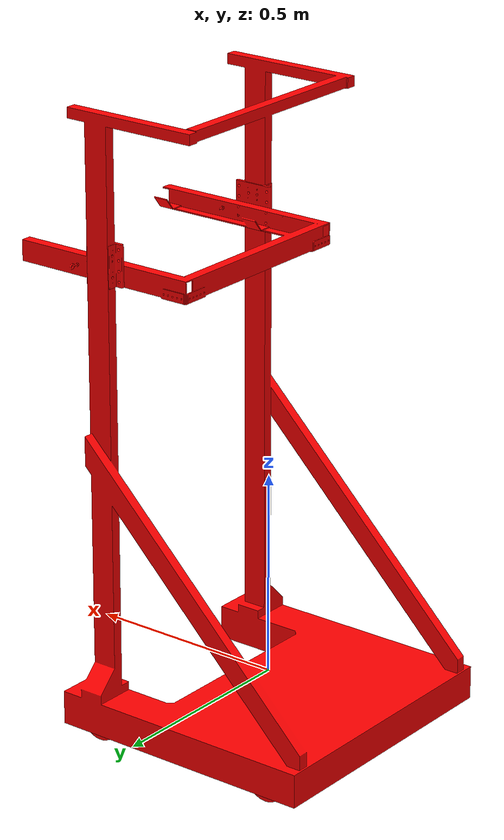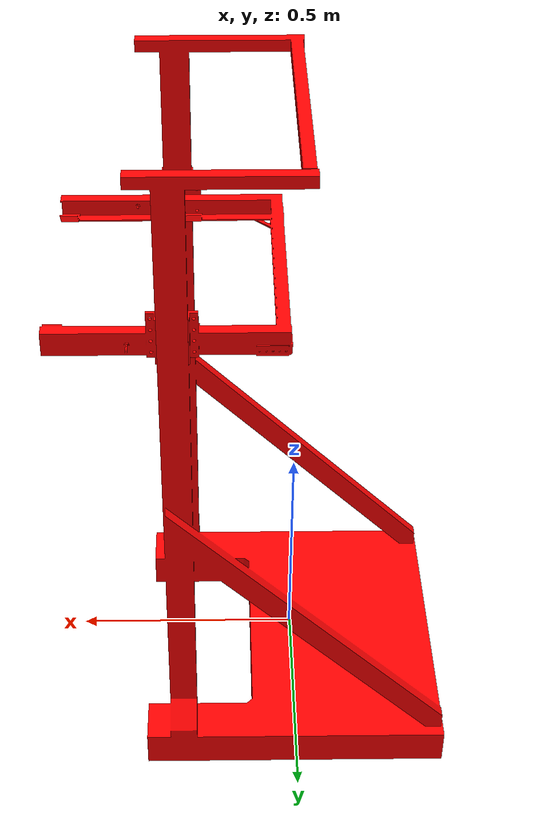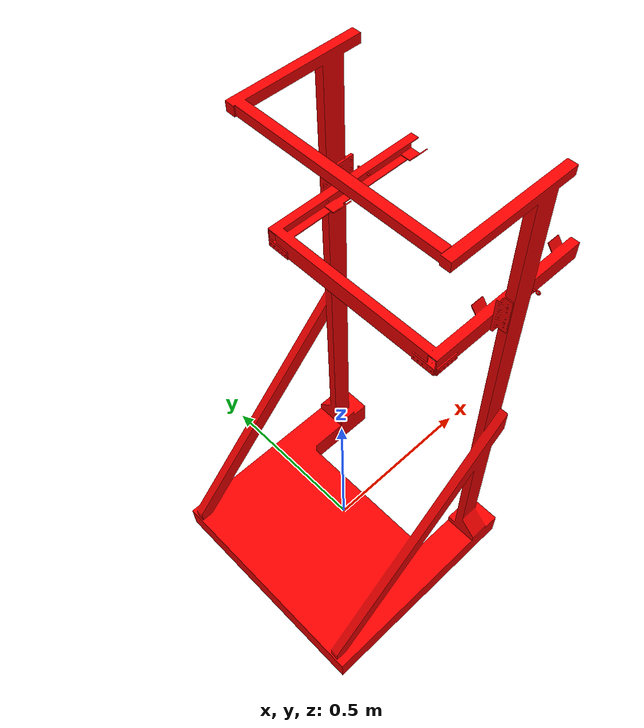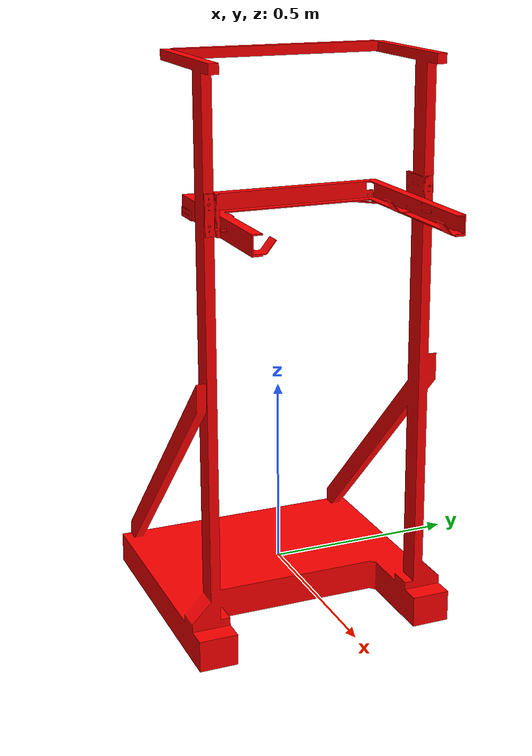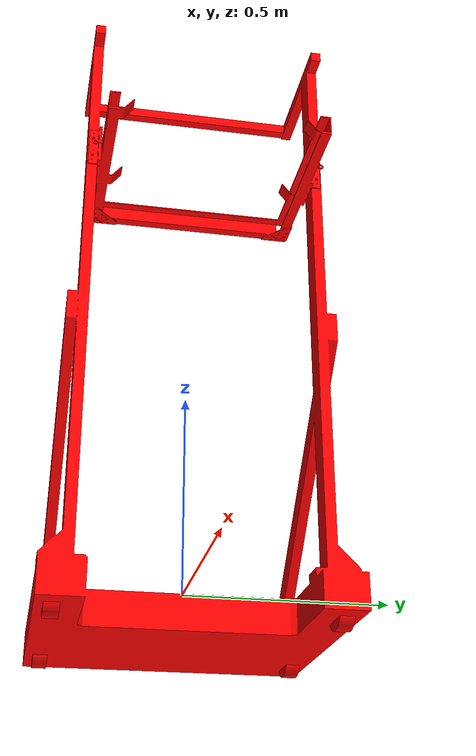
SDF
<?xml version="1.0" encoding="utf-8"?>
<sdf version="1.5">
  <model name="Mildread2015">
    <pose>0 0 -0.0641857999998441 0 0 0</pose>
    <plugin name="clock" filename="libgz_clock.so">
      <topic>/gazebo/frc/time</topic>
    </plugin>
    <link name="Chassis">
      <gravity>1</gravity>
      <self_collide>0</self_collide>
      <pose>0.0380029889506857 -0.00235709265715786 0.398592483781348 1.5707963267949 2.31519275537905E-15 -1.5707963267949</pose>
      <must_be_base_link>1</must_be_base_link>
      <velocity_decay>
        <linear>0</linear>
        <angular>0</angular>
      </velocity_decay>
      <inertial>
        <mass>12.5954657007975</mass>
        <pose>0 0 0 0 0 0</pose>
        <inertia>
          <ixx>4.15538346471795</ixx>
          <ixy>0.0117617887458408</ixy>
          <ixz>0.00608192316874415</ixz>
          <iyy>1.42548615639183</iyy>
          <iyz>0.70356227808634</iyz>
          <izz>4.34412622713074</izz>
        </inertia>
      </inertial>
      <collision name="Chassis_collision">
        <pose>-0.00235709265715695 -0.398592483781348 0.0380029889506856 0 0 0</pose>
        <geometry>
          <mesh>
            <scale>1 1 1</scale>
            <uri>model://Mildread2015/meshes/Chassis_col.STL</uri>
          </mesh>
        </geometry>
        <surface>
          <contact>
            <ode />
          </contact>
          <friction>
            <ode>
              <mu>0.5</mu>
              <mu2>0.5</mu2>
            </ode>
          </friction>
        </surface>
      </collision>
      <visual name="Chassis_visual">
        <pose>-0.00235709265715695 -0.398592483781348 0.0380029889506856 0 0 0</pose>
        <material>
          <ambient>1 0 0 1</ambient>
          <diffuse>1 0 0 1</diffuse>
        </material>
        <geometry>
          <mesh>
            <scale>1 1 1</scale>
            <uri>model://Mildread2015/meshes/Chassis.STL</uri>
          </mesh>
        </geometry>
      </visual>
      <sensor name="LeftChassisUltrasonic" type="sonar">
        <always_on>1</always_on>
        <visualize>1</visualize>
        <pose>-0.317704442657165 -0.230867483781196 -0.276072010994604 0 0 1.5707963267949</pose>
        <sonar>
          <min>0.1</min>
          <max>2</max>
          <radius>0.05</radius>
        </sonar>
      </sensor>
      <sensor name="RightChassisUltrasonic" type="sonar">
        <always_on>1</always_on>
        <visualize>1</visualize>
        <pose>0.312990257342842 -0.230867483781195 -0.276072009207477 0 0 1.5707963267949</pose>
        <sonar>
          <min>0.1</min>
          <max>2</max>
          <radius>0.05</radius>
        </sonar>
      </sensor>
    </link>
    <link name="LF">
      <gravity>1</gravity>
      <self_collide>0</self_collide>
      <pose>0.24500840000005 0.312470799999999 -0.0133857999997411 1.5707963267949 2.31519275537905E-15 -1.5707963267949</pose>
      <must_be_base_link>0</must_be_base_link>
      <velocity_decay>
        <linear>0</linear>
        <angular>0</angular>
      </velocity_decay>
      <inertial>
        <mass>0.277999991332051</mass>
        <pose>0 0 0 0 0 0</pose>
        <inertia>
          <ixx>0.000358708948815572</ixx>
          <ixy>3.51980482743536E-19</ixy>
          <ixz>5.39723461724909E-19</ixz>
          <iyy>0.000206593935208469</iyy>
          <iyz>1.2620663450194E-33</iyz>
          <izz>0.000206593935208469</izz>
        </inertia>
      </inertial>
      <collision name="LF_collision">
        <pose>0.312470799999999 0.0133857999997417 0.24500840000005 0 0 0</pose>
        <geometry>
          <mesh>
            <scale>1 1 1</scale>
            <uri>model://Mildread2015/meshes/LF_col.STL</uri>
          </mesh>
        </geometry>
        <surface>
          <contact>
            <ode />
          </contact>
          <friction>
            <ode>
              <mu>5</mu>
              <mu2>0</mu2>
              <fdir1>1 0 0</fdir1>
            </ode>
          </friction>
        </surface>
      </collision>
      <visual name="LF_visual">
        <pose>0.312470799999999 0.0133857999997417 0.24500840000005 0 0 0</pose>
        <material>
          <ambient>1 0 0 1</ambient>
          <diffuse>1 0 0 1</diffuse>
        </material>
        <geometry>
          <mesh>
            <scale>1 1 1</scale>
            <uri>model://Mildread2015/meshes/LF.STL</uri>
          </mesh>
        </geometry>
      </visual>
    </link>
    <joint name="Chassis-LF" type="revolute">
      <parent>Chassis</parent>
      <child>LF</child>
      <pose>-3.33066907387547E-16 1.73472347597681E-18 2.77555756156289E-17 0 0 0</pose>
      <axis>
        <xyz>-1 2.32712977238067E-15 -3.23774577026876E-15</xyz>
        <dynamics>
          <damping>0.1</damping>
          <friction>2</friction>
        </dynamics>
        <limit>
          <effort>5</effort>
        </limit>
      </axis>
    </joint>
    <link name="LR">
      <gravity>1</gravity>
      <self_collide>0</self_collide>
      <pose>-0.245008399999999 0.3124708 -0.013385799999843 1.5707963267949 2.31519275537905E-15 -1.5707963267949</pose>
      <must_be_base_link>0</must_be_base_link>
      <velocity_decay>
        <linear>0</linear>
        <angular>0</angular>
      </velocity_decay>
      <inertial>
        <mass>0.277999991332051</mass>
        <pose>0 0 0 0 0 0</pose>
        <inertia>
          <ixx>0.000358708948815572</ixx>
          <ixy>4.98948926069486E-19</ixy>
          <ixz>1.30103361900948E-19</ixz>
          <iyy>0.000206593935208469</iyy>
          <iyz>3.58837037774812E-20</iyz>
          <izz>0.000206593935208469</izz>
        </inertia>
      </inertial>
      <collision name="LR_collision">
        <pose>0.3124708 0.0133857999998438 -0.245008399999999 0 0 0</pose>
        <geometry>
          <mesh>
            <scale>1 1 1</scale>
            <uri>model://Mildread2015/meshes/LR_col.STL</uri>
          </mesh>
        </geometry>
        <surface>
          <contact>
            <ode />
          </contact>
          <friction>
            <ode>
              <mu>5</mu>
              <mu2>0</mu2>
              <fdir1>1 0 0</fdir1>
            </ode>
          </friction>
        </surface>
      </collision>
      <visual name="LR_visual">
        <pose>0.3124708 0.0133857999998438 -0.245008399999999 0 0 0</pose>
        <material>
          <ambient>1 0 0 1</ambient>
          <diffuse>1 0 0 1</diffuse>
        </material>
        <geometry>
          <mesh>
            <scale>1 1 1</scale>
            <uri>model://Mildread2015/meshes/LR.STL</uri>
          </mesh>
        </geometry>
      </visual>
    </link>
    <joint name="Chassis-LR" type="revolute">
      <parent>Chassis</parent>
      <child>LR</child>
      <pose>-3.33066907387547E-16 1.73472347597681E-18 -2.77555756156289E-17 0 0 0</pose>
      <axis>
        <xyz>-1 -2.97391742380892E-15 -6.76391872497219E-16</xyz>
        <dynamics>
          <damping>0.1</damping>
          <friction>2</friction>
        </dynamics>
        <limit>
          <effort>5</effort>
        </limit>
      </axis>
    </joint>
    <link name="RF">
      <gravity>1</gravity>
      <self_collide>0</self_collide>
      <pose>0.245008400000001 -0.312470799999998 -0.0133857999998441 1.5707963267949 2.31519275537905E-15 -1.5707963267949</pose>
      <must_be_base_link>0</must_be_base_link>
      <velocity_decay>
        <linear>0</linear>
        <angular>0</angular>
      </velocity_decay>
      <inertial>
        <mass>0.277999991332051</mass>
        <pose>0 0 0 0 0 0</pose>
        <inertia>
          <ixx>0.000358708948815572</ixx>
          <ixy>3.51980482743536E-19</ixy>
          <ixz>5.35850827090062E-19</ixz>
          <iyy>0.000206593935208469</iyy>
          <iyz>1.25520480510115E-33</iyz>
          <izz>0.000206593935208469</izz>
        </inertia>
      </inertial>
      <collision name="RF_collision">
        <pose>-0.312470799999999 0.0133857999998434 0.245008400000001 0 0 0</pose>
        <geometry>
          <mesh>
            <scale>1 1 1</scale>
            <uri>model://Mildread2015/meshes/RF_col.STL</uri>
          </mesh>
        </geometry>
        <surface>
          <contact>
            <ode />
          </contact>
          <friction>
            <ode>
              <mu>5</mu>
              <mu2>0</mu2>
              <fdir1>1 0 0</fdir1>
            </ode>
          </friction>
        </surface>
      </collision>
      <visual name="RF_visual">
        <pose>-0.312470799999999 0.0133857999998434 0.245008400000001 0 0 0</pose>
        <material>
          <ambient>1 0 0 1</ambient>
          <diffuse>1 0 0 1</diffuse>
        </material>
        <geometry>
          <mesh>
            <scale>1 1 1</scale>
            <uri>model://Mildread2015/meshes/RF.STL</uri>
          </mesh>
        </geometry>
      </visual>
    </link>
    <joint name="Chassis-RF" type="revolute">
      <parent>Chassis</parent>
      <child>RF</child>
      <pose>3.88578058618805E-16 1.73472347597681E-18 2.77555756156289E-17 0 0 0</pose>
      <axis>
        <xyz>-1 -2.32712977238067E-15 -3.23774577026876E-15</xyz>
        <dynamics>
          <damping>0.1</damping>
          <friction>2</friction>
        </dynamics>
        <limit>
          <effort>5</effort>
        </limit>
      </axis>
    </joint>
    <link name="RR">
      <gravity>1</gravity>
      <self_collide>0</self_collide>
      <pose>-0.245008399999779 -0.312470799999996 -0.0133858000003571 1.5707963267949 2.31519275537905E-15 -1.5707963267949</pose>
      <must_be_base_link>0</must_be_base_link>
      <velocity_decay>
        <linear>0</linear>
        <angular>0</angular>
      </velocity_decay>
      <inertial>
        <mass>0.277999991332051</mass>
        <pose>0 0 0 0 0 0</pose>
        <inertia>
          <ixx>0.000358708948815572</ixx>
          <ixy>3.54572681175279E-19</ixy>
          <ixz>5.26697098619803E-19</ixz>
          <iyy>0.000206593935208469</iyy>
          <iyz>3.10429104839227E-20</iyz>
          <izz>0.000206593935208469</izz>
        </inertia>
      </inertial>
      <collision name="RR_collision">
        <pose>-0.312470799999996 0.0133858000003564 -0.245008399999779 0 0 0</pose>
        <geometry>
          <mesh>
            <scale>1 1 1</scale>
            <uri>model://Mildread2015/meshes/RR_col.STL</uri>
          </mesh>
        </geometry>
        <surface>
          <contact>
            <ode />
          </contact>
          <friction>
            <ode>
              <mu>5</mu>
              <mu2>0</mu2>
              <fdir1>1 0 0</fdir1>
            </ode>
          </friction>
        </surface>
      </collision>
      <visual name="RR_visual">
        <pose>-0.312470799999996 0.0133858000003564 -0.245008399999779 0 0 0</pose>
        <material>
          <ambient>1 0 0 1</ambient>
          <diffuse>1 0 0 1</diffuse>
        </material>
        <geometry>
          <mesh>
            <scale>1 1 1</scale>
            <uri>model://Mildread2015/meshes/RR.STL</uri>
          </mesh>
        </geometry>
      </visual>
    </link>
    <joint name="Chassis-RR" type="revolute">
      <parent>Chassis</parent>
      <child>RR</child>
      <pose>0 0 -5.55111512312578E-17 0 0 0</pose>
      <axis>
        <xyz>-1 -2.11353636658577E-15 -3.32982886807258E-15</xyz>
        <dynamics>
          <damping>0.1</damping>
          <friction>2</friction>
        </dynamics>
        <limit>
          <effort>5</effort>
        </limit>
      </axis>
    </joint>
    <link name="ElevatorCarriage">
      <gravity>1</gravity>
      <self_collide>0</self_collide>
      <pose>0.15935450086794 -7.68943604643712E-14 1.0760994134063 1.5707963267949 2.31519275537905E-15 -1.5707963267949</pose>
      <must_be_base_link>0</must_be_base_link>
      <velocity_decay>
        <linear>0</linear>
        <angular>0</angular>
      </velocity_decay>
      <inertial>
        <mass>0.740046848703826</mass>
        <pose>0 0 0 0 0 0</pose>
        <inertia>
          <ixx>0.0188803339424567</ixx>
          <ixy>1.76073619660017E-14</ixy>
          <ixz>3.23016207965515E-11</ixz>
          <iyy>0.0526417729904565</iyy>
          <iyz>1.33572544372424E-05</iyz>
          <izz>0.0343024306317156</izz>
        </inertia>
      </inertial>
      <collision name="ElevatorCarriage_collision">
        <pose>-7.44383667055735E-14 -1.0760994134063 0.159354500867939 0 0 0</pose>
        <geometry>
          <mesh>
            <scale>1 1 1</scale>
            <uri>model://Mildread2015/meshes/ElevatorCarriage_col.STL</uri>
          </mesh>
        </geometry>
        <surface>
          <contact>
            <ode />
          </contact>
          <friction>
            <ode>
              <mu>0.1</mu>
              <mu2>0.1</mu2>
            </ode>
          </friction>
        </surface>
      </collision>
      <visual name="ElevatorCarriage_visual">
        <pose>-7.44383667055735E-14 -1.0760994134063 0.159354500867939 0 0 0</pose>
        <material>
          <ambient>1 0 0 1</ambient>
          <diffuse>1 0 0 1</diffuse>
        </material>
        <geometry>
          <mesh>
            <scale>1 1 1</scale>
            <uri>model://Mildread2015/meshes/ElevatorCarriage.STL</uri>
          </mesh>
        </geometry>
      </visual>
    </link>
    <joint name="Chassis-ElevatorCarriage" type="prismatic">
      <parent>Chassis</parent>
      <child>ElevatorCarriage</child>
      <pose>-0.298450000000081 4.44089209850063E-16 -0.103058004312019 0 0 0</pose>
      <axis>
        <xyz>-6.14372614900409E-31 1 3.96625982688355E-15</xyz>
        <dynamics>
          <damping>0.1</damping>
          <friction>1</friction>
        </dynamics>
        <limit>
          <upper>0.237049416715823</upper>
          <lower>-0.940050223068703</lower>
          <effort>10</effort>
        </limit>
      </axis>
    </joint>
    <plugin name="Left_Chassis_rangefinder" filename="libgz_rangefinder.so">
      <topic>/gazebo/frc/simulator/analog/1</topic>
      <sensor>LeftChassisUltrasonic</sensor>
    </plugin>
    <plugin name="Right_Chassis_rangefinder" filename="libgz_rangefinder.so">
      <topic>/gazebo/frc/simulator/analog/2</topic>
      <sensor>RightChassisUltrasonic</sensor>
    </plugin>
    <plugin name="Chassis_gyro" filename="libgz_gyro.so">
      <link>Chassis</link>
      <topic>/gazebo/frc/simulator/analog/0</topic>
      <units>degrees</units>
      <axis>yaw</axis>
    </plugin>
    <plugin name="Chassis-LF_motor" filename="libgz_dc_motor.so">
      <joint>Chassis-LF</joint>
      <topic>/gazebo/frc/simulator/pwm/1</topic>
      <multiplier>15</multiplier>
    </plugin>
    <plugin name="Chassis-LR_motor" filename="libgz_dc_motor.so">
      <joint>Chassis-LR</joint>
      <topic>/gazebo/frc/simulator/pwm/1</topic>
      <multiplier>15</multiplier>
    </plugin>
    <plugin name="Chassis-RF_motor" filename="libgz_dc_motor.so">
      <joint>Chassis-RF</joint>
      <topic>/gazebo/frc/simulator/pwm/2</topic>
      <multiplier>15</multiplier>
    </plugin>
    <plugin name="Chassis-RR_motor" filename="libgz_dc_motor.so">
      <joint>Chassis-RR</joint>
      <topic>/gazebo/frc/simulator/pwm/2</topic>
      <multiplier>15</multiplier>
    </plugin>
    <plugin name="Chassis-ElevatorCarriage_motor" filename="libgz_dc_motor.so">
      <joint>Chassis-ElevatorCarriage</joint>
      <topic>/gazebo/frc/simulator/pwm/3</topic>
      <multiplier>15</multiplier>
    </plugin>
    <plugin name="Chassis-ElevatorCarriage_intlimit" filename="libgz_limit_switch.so">
      <joint>Chassis-ElevatorCarriage</joint>
      <topic>/gazebo/frc/simulator/dio/0</topic>
      <type>internal</type>
      <units>degrees</units>
      <min>0</min>
      <max>0.237</max>
    </plugin>
    <plugin name="Chassis-ElevatorCarriage_intlimit" filename="libgz_limit_switch.so">
      <joint>Chassis-ElevatorCarriage</joint>
      <topic>/gazebo/frc/simulator/dio/1</topic>
      <type>internal</type>
      <units>degrees</units>
      <min>-0.94</min>
      <max>0</max>
    </plugin>
  </model>
</sdf>
